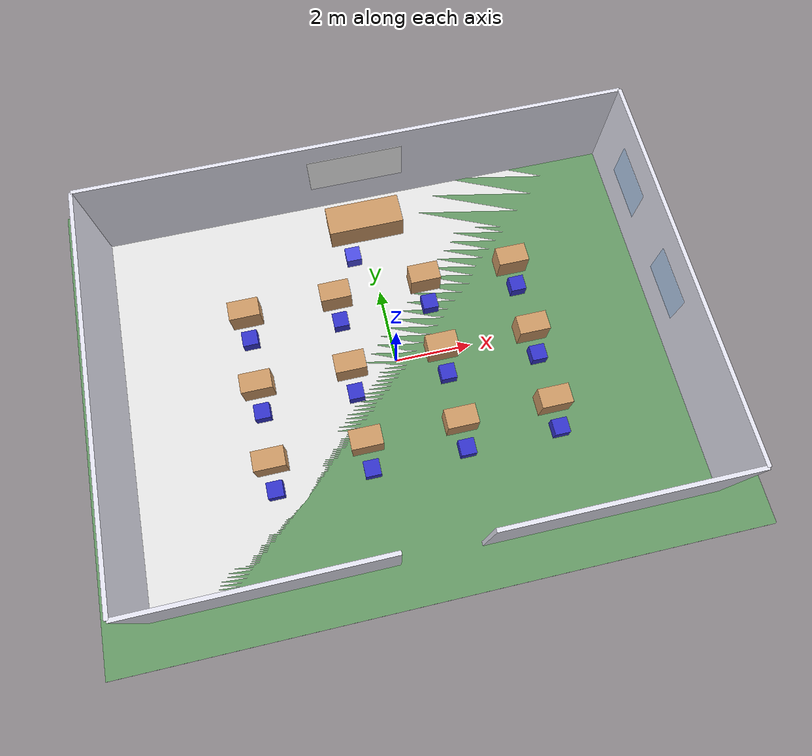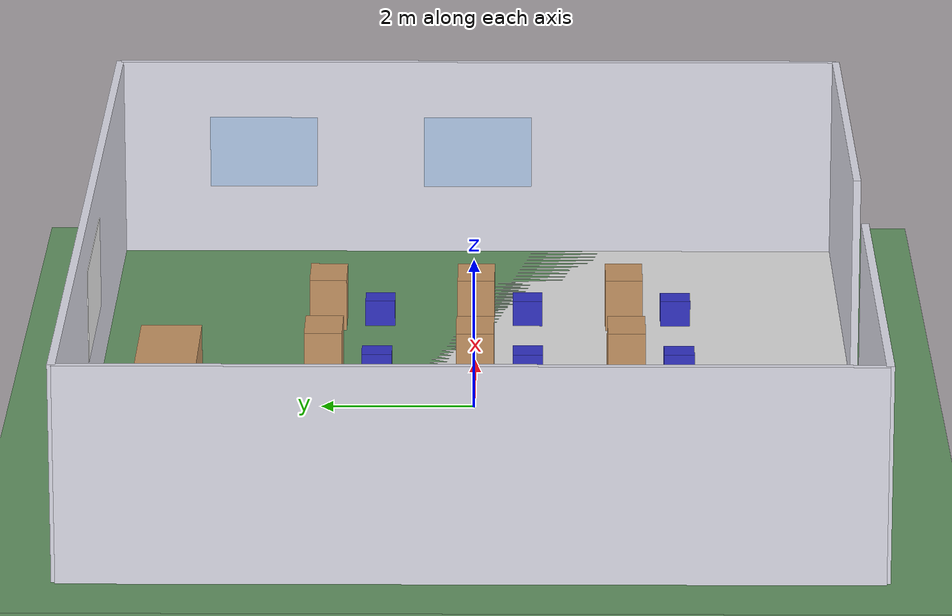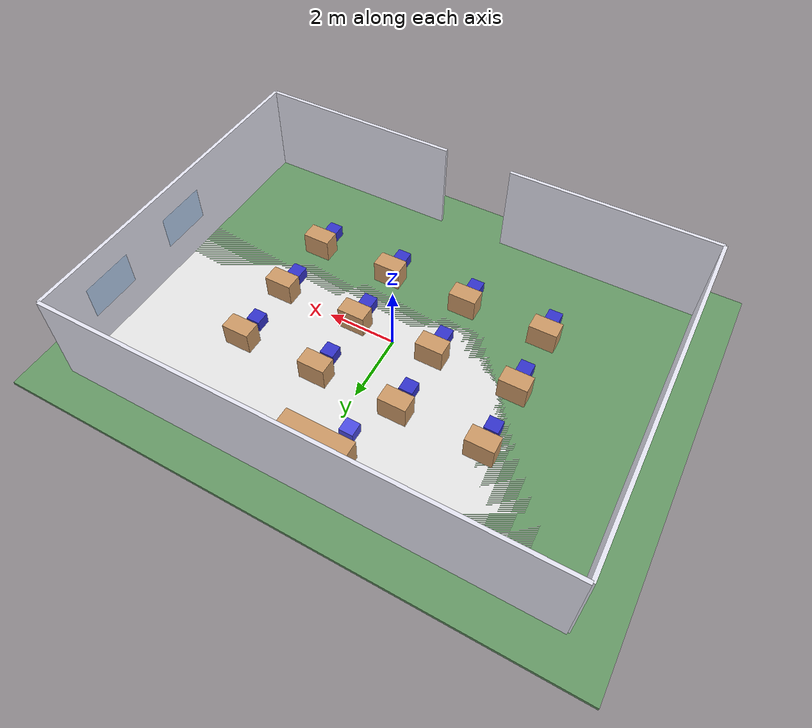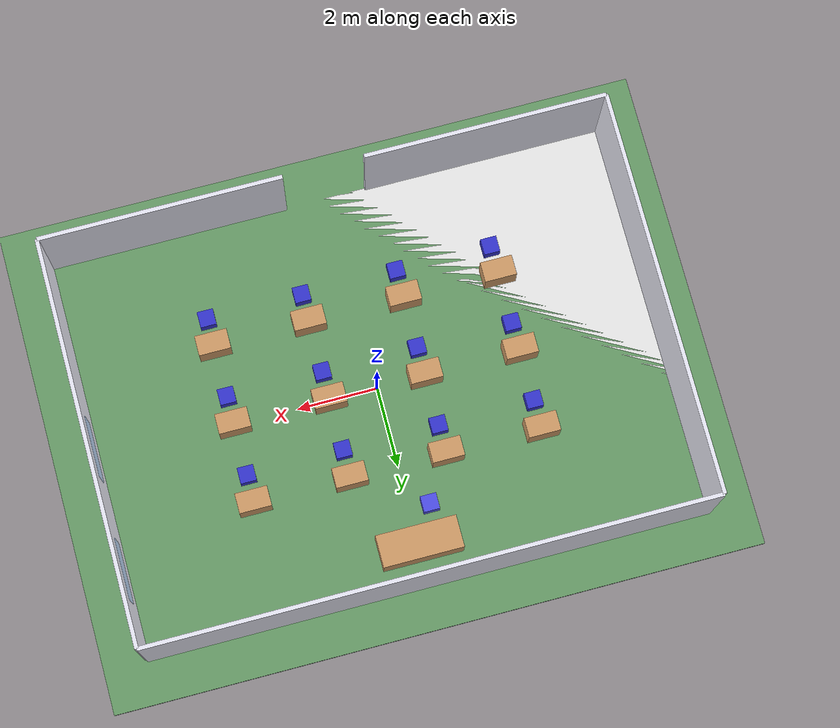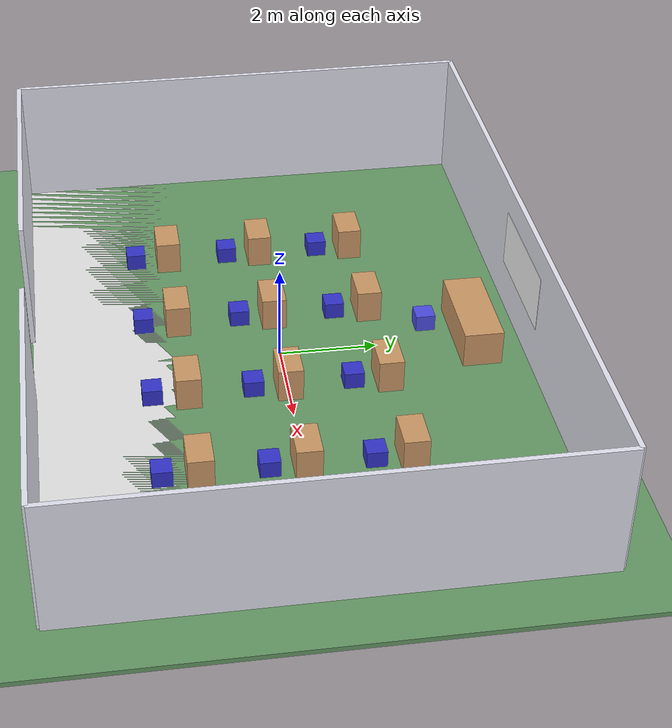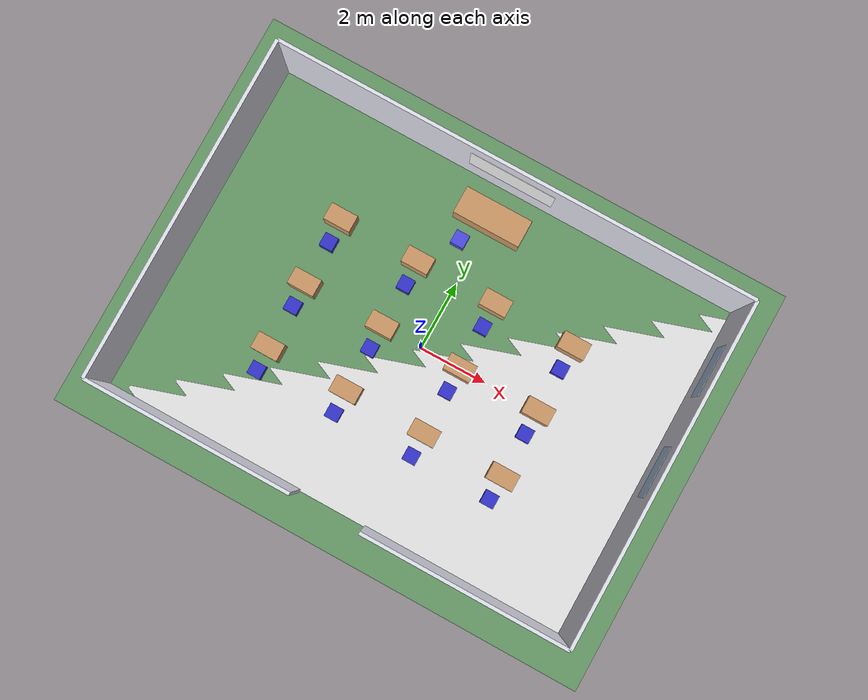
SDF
<?xml version="1.0" ?>
<sdf version="1.7">
  <world name="classroom_world">

    <!-- Basic world properties -->
    <gravity>0 0 -9.81</gravity>
    <magnetic_field>6e-06 2.3e-05 -4.2e-05</magnetic_field>

    <!-- Default physics (you can tweak later if needed) -->
    <physics name="default_physics" type="ode">
      <max_step_size>0.001</max_step_size>
      <real_time_factor>1</real_time_factor>
      <real_time_update_rate>1000</real_time_update_rate>
    </physics>

    <!-- Light and ground plane -->
    <light name="sun" type="directional">
      <cast_shadows>true</cast_shadows>
      <pose>0 0 10 0 0 0</pose>
      <diffuse>1 1 1 1</diffuse>
      <specular>0.2 0.2 0.2 1</specular>
      <attenuation>
        <range>100</range>
        <constant>0.9</constant>
        <linear>0.01</linear>
        <quadratic>0.001</quadratic>
      </attenuation>
      <direction>-0.2 0.4 -1</direction>
    </light>

    <!-- Simple ground plane -->
    <model name="ground_plane">
      <static>true</static>
      <pose>0 0 0 0 0 0</pose>
      <link name="link">
        <collision name="collision">
          <geometry>
            <box>
              <!-- big flat plane -->
              <size>50 50 0.1</size>
            </box>
          </geometry>
          <surface>
            <friction>
              <ode>
                <mu>1.0</mu>
                <mu2>1.0</mu2>
              </ode>
            </friction>
          </surface>
        </collision>
        <visual name="visual">
          <geometry>
            <box>
              <size>50 50 0.1</size>
            </box>
          </geometry>
          <material>
            <ambient>0.3 0.5 0.3 1</ambient>
            <diffuse>0.4 0.6 0.4 1</diffuse>
          </material>
        </visual>
      </link>
    </model>

    <!-- a thin floor slab so you see the room extents -->
    <model name="floor_slab">
      <static>true</static>
      <!-- Size: 14 x 10 m room, 0.05 m thick -->
      <pose>0 0 0.025 0 0 0</pose>
      <link name="link">
        <collision name="collision">
          <geometry>
            <box>
              <size>14 10 0.05</size>
            </box>
          </geometry>
        </collision>
        <visual name="visual">
          <geometry>
            <box>
              <size>14 10 0.05</size>
            </box>
          </geometry>
          <material>
            <ambient>0.8 0.8 0.8 1</ambient>
            <diffuse>0.9 0.9 0.9 1</diffuse>
          </material>
        </visual>
      </link>
    </model>

    <!-- Walls: height 2.8 m, room ~14 x 10 m -->

    <!-- Back wall (single long segment at y=+5) -->
    <model name="wall_back">
      <static>true</static>
      <pose>0 5 1.4 0 0 0</pose>
      <link name="link">
        <collision name="collision">
          <geometry>
            <box>
              <size>14 0.1 2.8</size>
            </box>
          </geometry>
        </collision>
        <visual name="visual">
          <geometry>
            <box>
              <size>14 0.1 2.8</size>
            </box>
          </geometry>
          <material>
            <ambient>0.85 0.85 0.9 1</ambient>
            <diffuse>0.9 0.9 0.95 1</diffuse>
          </material>
        </visual>
      </link>
    </model>

    <!-- Front wall split into two segments, leaving a door gap (~2 m wide) -->

    <!-- Front wall left segment -->
    <model name="wall_front_left">
      <static>true</static>
      <!-- Centered at x=-4, y=-5 -->
      <pose>-4 -5 1.4 0 0 0</pose>
      <link name="link">
        <collision name="collision">
          <geometry>
            <box>
              <!-- 6 m long, 0.1 m thick -->
              <size>6 0.1 2.8</size>
            </box>
          </geometry>
        </collision>
        <visual name="visual">
          <geometry>
            <box>
              <size>6 0.1 2.8</size>
            </box>
          </geometry>
          <material>
            <ambient>0.85 0.85 0.9 1</ambient>
            <diffuse>0.9 0.9 0.95 1</diffuse>
          </material>
        </visual>
      </link>
    </model>

    <!-- Front wall right segment -->
    <model name="wall_front_right">
      <static>true</static>
      <!-- Centered at x=4, y=-5 -->
      <pose>4 -5 1.4 0 0 0</pose>
      <link name="link">
        <collision name="collision">
          <geometry>
            <box>
              <!-- 6 m long, 0.1 m thick -->
              <size>6 0.1 2.8</size>
            </box>
          </geometry>
        </collision>
        <visual name="visual">
          <geometry>
            <box>
              <size>6 0.1 2.8</size>
            </box>
          </geometry>
          <material>
            <ambient>0.85 0.85 0.9 1</ambient>
            <diffuse>0.9 0.9 0.95 1</diffuse>
          </material>
        </visual>
      </link>
    </model>

    <!-- Left wall -->
    <model name="wall_left">
      <static>true</static>
      <pose>-7 0 1.4 0 0 0</pose>
      <link name="link">
        <collision name="collision">
          <geometry>
            <box>
              <size>0.1 10 2.8</size>
            </box>
          </geometry>
        </collision>
        <visual name="visual">
          <geometry>
            <box>
              <size>0.1 10 2.8</size>
            </box>
          </geometry>
          <material>
            <ambient>0.85 0.85 0.9 1</ambient>
            <diffuse>0.9 0.9 0.95 1</diffuse>
          </material>
        </visual>
      </link>
    </model>

    <!-- Right wall -->
    <model name="wall_right">
      <static>true</static>
      <pose>7 0 1.4 0 0 0</pose>
      <link name="link">
        <collision name="collision">
          <geometry>
            <box>
              <size>0.1 10 2.8</size>
            </box>
          </geometry>
        </collision>
        <visual name="visual">
          <geometry>
            <box>
              <size>0.1 10 2.8</size>
            </box>
          </geometry>
          <material>
            <ambient>0.85 0.85 0.9 1</ambient>
            <diffuse>0.9 0.9 0.95 1</diffuse>
          </material>
        </visual>
      </link>
    </model>

    <!-- Windows on the right wall (just visuals, no cutout in collision) -->

    <model name="window_right_1">
      <static>true</static>
      <!-- x ~ wall, y=3 -->
      <pose>6.95 3 1.5 0 0 0</pose>
      <link name="link">
        <collision name="collision">
          <geometry>
            <box>
              <size>0.02 1.5 1</size>
            </box>
          </geometry>
        </collision>
        <visual name="visual">
          <geometry>
            <box>
              <size>0.02 1.5 1</size>
            </box>
          </geometry>
          <material>
            <ambient>0.6 0.8 1.0 0.5</ambient>
            <diffuse>0.6 0.8 1.0 0.5</diffuse>
          </material>
        </visual>
      </link>
    </model>

    <model name="window_right_2">
      <static>true</static>
      <!-- x ~ wall, y=0 -->
      <pose>6.95 0 1.5 0 0 0</pose>
      <link name="link">
        <collision name="collision">
          <geometry>
            <box>
              <size>0.02 1.5 1</size>
            </box>
          </geometry>
        </collision>
        <visual name="visual">
          <geometry>
            <box>
              <size>0.02 1.5 1</size>
            </box>
          </geometry>
          <material>
            <ambient>0.6 0.8 1.0 0.5</ambient>
          </material>
        </visual>
      </link>
    </model>

    <!-- Whiteboard on back wall -->
    <model name="whiteboard">
      <static>true</static>
      <pose>0 4.95 1.6 0 0 0</pose> <!-- against back wall -->
      <link name="link">
        <collision name="collision">
          <geometry>
            <box>
              <size>2.5 0.02 1.2</size>
            </box>
          </geometry>
        </collision>
        <visual name="visual">
          <geometry>
            <box>
              <size>2.5 0.02 1.2</size>
            </box>
          </geometry>
          <material>
            <ambient>0.95 0.95 0.95 1</ambient>
            <diffuse>0.98 0.98 0.98 1</diffuse>
          </material>
        </visual>
      </link>
    </model>

    <!-- Teacher desk near the board -->
    <model name="teacher_desk">
      <static>true</static>
      <pose>0 4 0.4 0 0 0</pose>
      <link name="link">
        <collision name="collision">
          <geometry>
            <box>
              <size>2.0 0.8 0.8</size>
            </box>
          </geometry>
        </collision>
        <visual name="visual">
          <geometry>
            <box>
              <size>2.0 0.8 0.8</size>
            </box>
          </geometry>
          <material>
            <ambient>0.7 0.5 0.3 1</ambient>
            <diffuse>0.8 0.6 0.4 1</diffuse>
          </material>
        </visual>
      </link>
    </model>

    <!-- Teacher chair (slightly smaller) -->
    <model name="teacher_chair">
      <static>true</static>
      <pose>-0.5 3.1 0.2 0 0 0</pose>
      <link name="link">
        <collision name="collision">
          <geometry>
            <box>
              <size>0.4 0.4 0.4</size>
            </box>
          </geometry>
        </collision>
        <visual name="visual">
          <geometry>
            <box>
              <size>0.4 0.4 0.4</size>
            </box>
          </geometry>
          <material>
            <ambient>0.3 0.3 0.8 1</ambient>
            <diffuse>0.3 0.3 0.9 1</diffuse>
          </material>
        </visual>
      </link>
    </model>

    <!-- Student desks & chairs (4 columns x 3 rows) -->
    <!-- Student desk size: 0.8 x 0.5 x 0.75 high -->
    <!-- Student chair size: 0.4 cube -->

    <!-- Columns X positions: -3.6, -1.2, 1.2, 3.6 -->
    <!-- Rows Y positions (front to back): -2, 0, 2 -->
    <!-- Chairs sit ~0.7 m behind each desk in Y -->

    <!-- Row 1 (closest to front wall, y=-2) -->
    <model name="desk_r1_c1">
      <static>true</static>
      <pose>-3.6 -2 0.375 0 0 0</pose>
      <link name="link">
        <collision name="collision">
          <geometry><box><size>0.8 0.5 0.75</size></box></geometry>
        </collision>
        <visual name="visual">
          <geometry><box><size>0.8 0.5 0.75</size></box></geometry>
          <material>
            <ambient>0.7 0.5 0.3 1</ambient>
            <diffuse>0.8 0.6 0.4 1</diffuse>
          </material>
        </visual>
      </link>
    </model>

    <model name="chair_r1_c1">
      <static>true</static>
      <pose>-3.6 -2.7 0.2 0 0 0</pose>
      <link name="link">
        <collision name="collision">
          <geometry><box><size>0.4 0.4 0.4</size></box></geometry>
        </collision>
        <visual name="visual">
          <geometry><box><size>0.4 0.4 0.4</size></box></geometry>
          <material>
            <ambient>0.2 0.2 0.6 1</ambient>
            <diffuse>0.2 0.2 0.8 1</diffuse>
          </material>
        </visual>
      </link>
    </model>

    <model name="desk_r1_c2">
      <static>true</static>
      <pose>-1.2 -2 0.375 0 0 0</pose>
      <link name="link">
        <collision name="collision">
          <geometry><box><size>0.8 0.5 0.75</size></box></geometry>
        </collision>
        <visual name="visual">
          <geometry><box><size>0.8 0.5 0.75</size></box></geometry>
          <material>
            <ambient>0.7 0.5 0.3 1</ambient>
            <diffuse>0.8 0.6 0.4 1</diffuse>
          </material>
        </visual>
      </link>
    </model>

    <model name="chair_r1_c2">
      <static>true</static>
      <pose>-1.2 -2.7 0.2 0 0 0</pose>
      <link name="link">
        <collision name="collision">
          <geometry><box><size>0.4 0.4 0.4</size></box></geometry>
        </collision>
        <visual name="visual">
          <geometry><box><size>0.4 0.4 0.4</size></box></geometry>
          <material>
            <ambient>0.2 0.2 0.6 1</ambient>
            <diffuse>0.2 0.2 0.8 1</diffuse>
          </material>
        </visual>
      </link>
    </model>

    <model name="desk_r1_c3">
      <static>true</static>
      <pose>1.2 -2 0.375 0 0 0</pose>
      <link name="link">
        <collision name="collision">
          <geometry><box><size>0.8 0.5 0.75</size></box></geometry>
        </collision>
        <visual name="visual">
          <geometry><box><size>0.8 0.5 0.75</size></box></geometry>
          <material>
            <ambient>0.7 0.5 0.3 1</ambient>
            <diffuse>0.8 0.6 0.4 1</diffuse>
          </material>
        </visual>
      </link>
    </model>

    <model name="chair_r1_c3">
      <static>true</static>
      <pose>1.2 -2.7 0.2 0 0 0</pose>
      <link name="link">
        <collision name="collision">
          <geometry><box><size>0.4 0.4 0.4</size></box></geometry>
        </collision>
        <visual name="visual">
          <geometry><box><size>0.4 0.4 0.4</size></box></geometry>
          <material>
            <ambient>0.2 0.2 0.6 1</ambient>
            <diffuse>0.2 0.2 0.8 1</diffuse>
          </material>
        </visual>
      </link>
    </model>

    <model name="desk_r1_c4">
      <static>true</static>
      <pose>3.6 -2 0.375 0 0 0</pose>
      <link name="link">
        <collision name="collision">
          <geometry><box><size>0.8 0.5 0.75</size></box></geometry>
        </collision>
        <visual name="visual">
          <geometry><box><size>0.8 0.5 0.75</size></box></geometry>
          <material>
            <ambient>0.7 0.5 0.3 1</ambient>
            <diffuse>0.8 0.6 0.4 1</diffuse>
          </material>
        </visual>
      </link>
    </model>

    <model name="chair_r1_c4">
      <static>true</static>
      <pose>3.6 -2.7 0.2 0 0 0</pose>
      <link name="link">
        <collision name="collision">
          <geometry><box><size>0.4 0.4 0.4</size></box></geometry>
        </collision>
        <visual name="visual">
          <geometry><box><size>0.4 0.4 0.4</size></box></geometry>
          <material>
            <ambient>0.2 0.2 0.6 1</ambient>
            <diffuse>0.2 0.2 0.8 1</diffuse>
          </material>
        </visual>
      </link>
    </model>

    <!-- Row 2 (y=0) -->

    <model name="desk_r2_c1">
      <static>true</static>
      <pose>-3.6 0 0.375 0 0 0</pose>
      <link name="link">
        <collision name="collision">
          <geometry><box><size>0.8 0.5 0.75</size></box></geometry>
        </collision>
        <visual name="visual">
          <geometry><box><size>0.8 0.5 0.75</size></box></geometry>
          <material>
            <ambient>0.7 0.5 0.3 1</ambient>
            <diffuse>0.8 0.6 0.4 1</diffuse>
          </material>
        </visual>
      </link>
    </model>

    <model name="chair_r2_c1">
      <static>true</static>
      <pose>-3.6 -0.7 0.2 0 0 0</pose>
      <link name="link">
        <collision name="collision">
          <geometry><box><size>0.4 0.4 0.4</size></box></geometry>
        </collision>
        <visual name="visual">
          <geometry><box><size>0.4 0.4 0.4</size></box></geometry>
          <material>
            <ambient>0.2 0.2 0.6 1</ambient>
            <diffuse>0.2 0.2 0.8 1</diffuse>
          </material>
        </visual>
      </link>
    </model>

    <model name="desk_r2_c2">
      <static>true</static>
      <pose>-1.2 0 0.375 0 0 0</pose>
      <link name="link">
        <collision name="collision">
          <geometry><box><size>0.8 0.5 0.75</size></box></geometry>
        </collision>
        <visual name="visual">
          <geometry><box><size>0.8 0.5 0.75</size></box></geometry>
          <material>
            <ambient>0.7 0.5 0.3 1</ambient>
            <diffuse>0.8 0.6 0.4 1</diffuse>
          </material>
        </visual>
      </link>
    </model>

    <model name="chair_r2_c2">
      <static>true</static>
      <pose>-1.2 -0.7 0.2 0 0 0</pose>
      <link name="link">
        <collision name="collision">
          <geometry><box><size>0.4 0.4 0.4</size></box></geometry>
        </collision>
        <visual name="visual">
          <geometry><box><size>0.4 0.4 0.4</size></box></geometry>
          <material>
            <ambient>0.2 0.2 0.6 1</ambient>
            <diffuse>0.2 0.2 0.8 1</diffuse>
          </material>
        </visual>
      </link>
    </model>

    <model name="desk_r2_c3">
      <static>true</static>
      <pose>1.2 0 0.375 0 0 0</pose>
      <link name="link">
        <collision name="collision">
          <geometry><box><size>0.8 0.5 0.75</size></box></geometry>
        </collision>
        <visual name="visual">
          <geometry><box><size>0.8 0.5 0.75</size></box></geometry>
          <material>
            <ambient>0.7 0.5 0.3 1</ambient>
            <diffuse>0.8 0.6 0.4 1</diffuse>
          </material>
        </visual>
      </link>
    </model>

    <model name="chair_r2_c3">
      <static>true</static>
      <pose>1.2 -0.7 0.2 0 0 0</pose>
      <link name="link">
        <collision name="collision">
          <geometry><box><size>0.4 0.4 0.4</size></box></geometry>
        </collision>
        <visual name="visual">
          <geometry><box><size>0.4 0.4 0.4</size></box></geometry>
          <material>
            <ambient>0.2 0.2 0.6 1</ambient>
            <diffuse>0.2 0.2 0.8 1</diffuse>
          </material>
        </visual>
      </link>
    </model>

    <model name="desk_r2_c4">
      <static>true</static>
      <pose>3.6 0 0.375 0 0 0</pose>
      <link name="link">
        <collision name="collision">
          <geometry><box><size>0.8 0.5 0.75</size></box></geometry>
        </collision>
        <visual name="visual">
          <geometry><box><size>0.8 0.5 0.75</size></box></geometry>
          <material>
            <ambient>0.7 0.5 0.3 1</ambient>
            <diffuse>0.8 0.6 0.4 1</diffuse>
          </material>
        </visual>
      </link>
    </model>

    <model name="chair_r2_c4">
      <static>true</static>
      <pose>3.6 -0.7 0.2 0 0 0</pose>
      <link name="link">
        <collision name="collision">
          <geometry><box><size>0.4 0.4 0.4</size></box></geometry>
        </collision>
        <visual name="visual">
          <geometry><box><size>0.4 0.4 0.4</size></box></geometry>
          <material>
            <ambient>0.2 0.2 0.6 1</ambient>
            <diffuse>0.2 0.2 0.8 1</diffuse>
          </material>
        </visual>
      </link>
    </model>

    <!-- Row 3 (y=2) -->

    <model name="desk_r3_c1">
      <static>true</static>
      <pose>-3.6 2 0.375 0 0 0</pose>
      <link name="link">
        <collision name="collision">
          <geometry><box><size>0.8 0.5 0.75</size></box></geometry>
        </collision>
        <visual name="visual">
          <geometry><box><size>0.8 0.5 0.75</size></box></geometry>
          <material>
            <ambient>0.7 0.5 0.3 1</ambient>
            <diffuse>0.8 0.6 0.4 1</diffuse>
          </material>
        </visual>
      </link>
    </model>

    <model name="chair_r3_c1">
      <static>true</static>
      <pose>-3.6 1.3 0.2 0 0 0</pose>
      <link name="link">
        <collision name="collision">
          <geometry><box><size>0.4 0.4 0.4</size></box></geometry>
        </collision>
        <visual name="visual">
          <geometry><box><size>0.4 0.4 0.4</size></box></geometry>
          <material>
            <ambient>0.2 0.2 0.6 1</ambient>
            <diffuse>0.2 0.2 0.8 1</diffuse>
          </material>
        </visual>
      </link>
    </model>

    <model name="desk_r3_c2">
      <static>true</static>
      <pose>-1.2 2 0.375 0 0 0</pose>
      <link name="link">
        <collision name="collision">
          <geometry><box><size>0.8 0.5 0.75</size></box></geometry>
        </collision>
        <visual name="visual">
          <geometry><box><size>0.8 0.5 0.75</size></box></geometry>
          <material>
            <ambient>0.7 0.5 0.3 1</ambient>
            <diffuse>0.8 0.6 0.4 1</diffuse>
          </material>
        </visual>
      </link>
    </model>

    <model name="chair_r3_c2">
      <static>true</static>
      <pose>-1.2 1.3 0.2 0 0 0</pose>
      <link name="link">
        <collision name="collision">
          <geometry><box><size>0.4 0.4 0.4</size></box></geometry>
        </collision>
        <visual name="visual">
          <geometry><box><size>0.4 0.4 0.4</size></box></geometry>
          <material>
            <ambient>0.2 0.2 0.6 1</ambient>
            <diffuse>0.2 0.2 0.8 1</diffuse>
          </material>
        </visual>
      </link>
    </model>

    <model name="desk_r3_c3">
      <static>true</static>
      <pose>1.2 2 0.375 0 0 0</pose>
      <link name="link">
        <collision name="collision">
          <geometry><box><size>0.8 0.5 0.75</size></box></geometry>
        </collision>
        <visual name="visual">
          <geometry><box><size>0.8 0.5 0.75</size></box></geometry>
          <material>
            <ambient>0.7 0.5 0.3 1</ambient>
            <diffuse>0.8 0.6 0.4 1</diffuse>
          </material>
        </visual>
      </link>
    </model>

    <model name="chair_r3_c3">
      <static>true</static>
      <pose>1.2 1.3 0.2 0 0 0</pose>
      <link name="link">
        <collision name="collision">
          <geometry><box><size>0.4 0.4 0.4</size></box></geometry>
        </collision>
        <visual name="visual">
          <geometry><box><size>0.4 0.4 0.4</size></box></geometry>
          <material>
            <ambient>0.2 0.2 0.6 1</ambient>
            <diffuse>0.2 0.2 0.8 1</diffuse>
          </material>
        </visual>
      </link>
    </model>

    <model name="desk_r3_c4">
      <static>true</static>
      <pose>3.6 2 0.375 0 0 0</pose>
      <link name="link">
        <collision name="collision">
          <geometry><box><size>0.8 0.5 0.75</size></box></geometry>
        </collision>
        <visual name="visual">
          <geometry><box><size>0.8 0.5 0.75</size></box></geometry>
          <material>
            <ambient>0.7 0.5 0.3 1</ambient>
            <diffuse>0.8 0.6 0.4 1</diffuse>
          </material>
        </visual>
      </link>
    </model>

    <model name="chair_r3_c4">
      <static>true</static>
      <pose>3.6 1.3 0.2 0 0 0</pose>
      <link name="link">
        <collision name="collision">
          <geometry><box><size>0.4 0.4 0.4</size></box></geometry>
        </collision>
        <visual name="visual">
          <geometry><box><size>0.4 0.4 0.4</size></box></geometry>
          <material>
            <ambient>0.2 0.2 0.6 1</ambient>
            <diffuse>0.2 0.2 0.8 1</diffuse>
          </material>
        </visual>
      </link>
    </model>
  </world>
</sdf>
